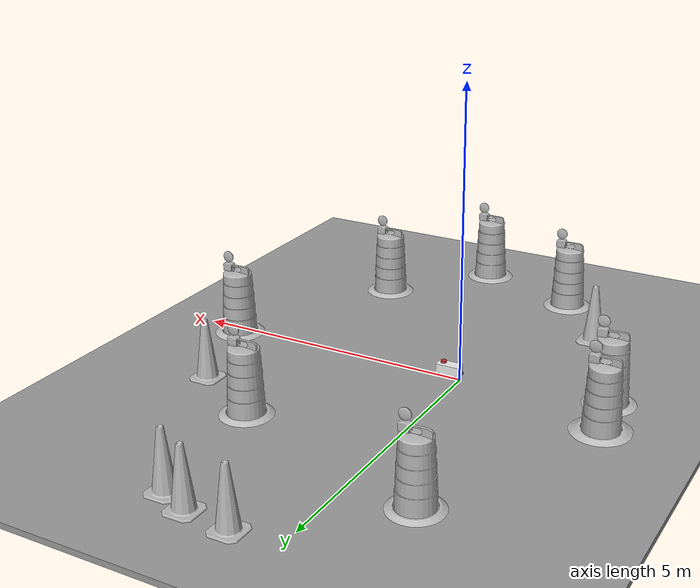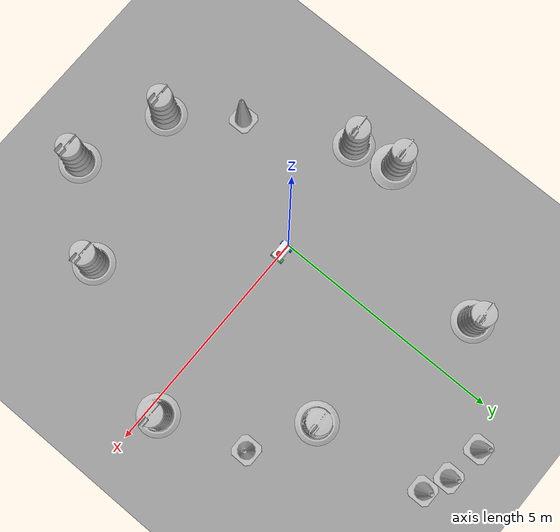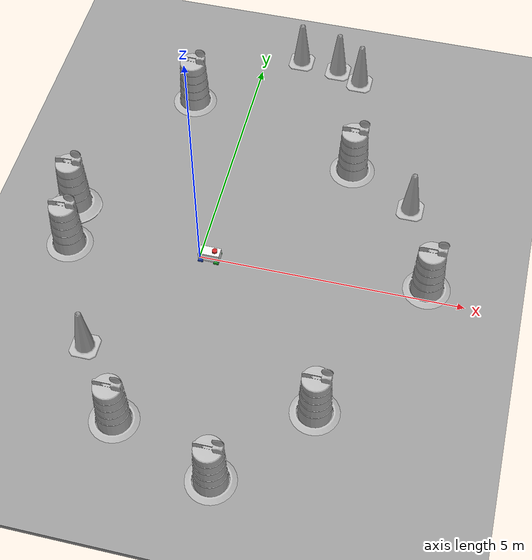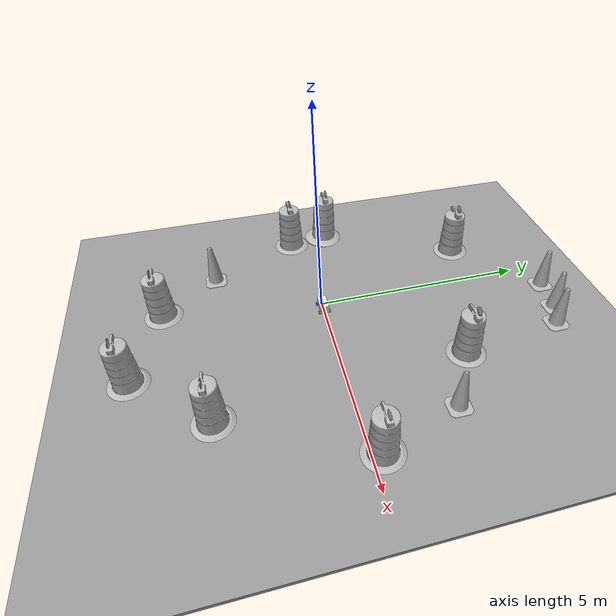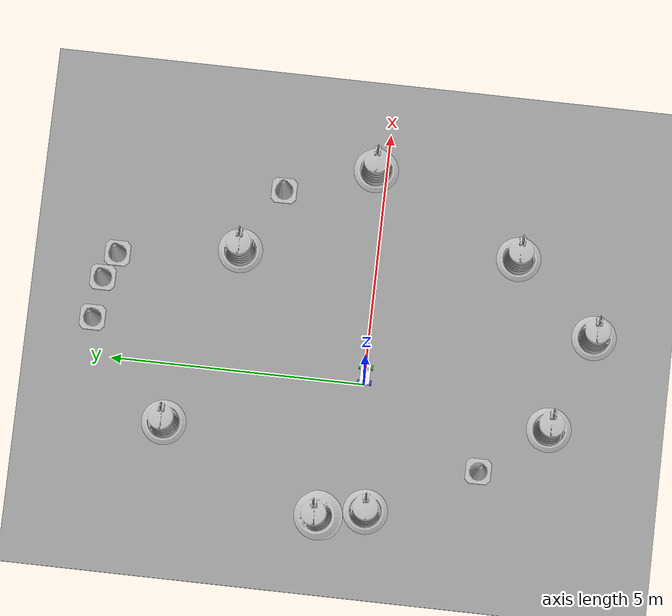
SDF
<sdf version="1.7">
 <world name="default">
  <light name="sun" type="directional">
   <pose>0 0 10 0 -0 0</pose>
   <diffuse>0.8 0.8 0.8 1</diffuse>
   <specular>0.2 0.2 0.2 1</specular>
   <attenuation>
    <range>1000</range>
    <constant>0.9</constant>
    <linear>0.01</linear>
    <quadratic>0.001</quadratic>
   </attenuation>
   <direction>-0.5 0.1 -0.9</direction>
   <spot><inner_angle>0</inner_angle><outer_angle>0</outer_angle><falloff>0</falloff></spot>
  </light>
  <model name="ground_plane">
   <static>1</static>
   <link name="link">
    <collision name="collision">
     <geometry><plane><normal>0 0 1</normal><size>100 100</size></plane></geometry>
     <surface><friction><ode><mu>100</mu><mu2>50</mu2></ode></friction></surface>
    </collision>
    <visual name="visual">
     <cast_shadows>0</cast_shadows>
     <geometry><plane><normal>0 0 1</normal><size>100 100</size></plane></geometry>
     <material>
      <script><uri>file://media/materials/scripts/gazebo.material</uri><name>Gazebo/Grey</name></script>
     </material>
    </visual>
   </link>
  </model>
  <gravity>0 0 -9.8</gravity>
  <magnetic_field>6e-06 2.3e-05 -4.2e-05</magnetic_field>
  <atmosphere type="adiabatic"/>
  <physics type="ode">
   <max_step_size>0.001</max_step_size>
   <real_time_factor>1</real_time_factor>
   <real_time_update_rate>1000</real_time_update_rate>
  </physics>
  <scene><ambient>0.4 0.4 0.4 1</ambient><background>0.7 0.7 0.7 1</background><shadows>1</shadows></scene>
  <audio><device>default</device></audio>
  <spherical_coordinates>
   <surface_model>EARTH_WGS84</surface_model>
   <latitude_deg>0</latitude_deg>
   <longitude_deg>0</longitude_deg>
   <elevation>0</elevation>
   <heading_deg>0</heading_deg>
  </spherical_coordinates>
  <model name="my_bot">
   <link name="base_link">
    <inertial>
     <pose>0.204762 0 0.105952 0 -0 0</pose>
     <mass>2.1</mass>
     <inertia>
      <ixx>0.0148973</ixx>
      <ixy>0</ixy>
      <ixz>-0.00119048</ixz>
      <iyy>0.0358496</iyy>
      <iyz>0</iyz>
      <izz>0.0344107</izz>
     </inertia>
    </inertial>
    <collision name="base_link_fixed_joint_lump__chassis_collision">
     <pose>0.2 0 0.1 0 -0 0</pose>
     <geometry><box><size>0.4 0.2 0.2</size></box></geometry>
    </collision>
    <collision name="base_link_fixed_joint_lump__laser_frame_collision_1">
     <pose>0.3 0 0.225 0 -0 0</pose>
     <geometry><cylinder><length>0.04</length><radius>0.05</radius></cylinder></geometry>
    </collision>
    <visual name="base_link_fixed_joint_lump__chassis_visual">
     <pose>0.2 0 0.1 0 -0 0</pose>
     <geometry><box><size>0.4 0.2 0.2</size></box></geometry>
     <material>
      <script><name>Gazebo/White</name><uri>file://media/materials/scripts/gazebo.material</uri></script>
     </material>
    </visual>
    <visual name="base_link_fixed_joint_lump__laser_frame_visual_1">
     <pose>0.3 0 0.225 0 -0 0</pose>
     <geometry><cylinder><length>0.04</length><radius>0.05</radius></cylinder></geometry>
     <material>
      <script><name>Gazebo/Red</name><uri>file://media/materials/scripts/gazebo.material</uri></script>
     </material>
    </visual>
    <sensor name="laser" type="ray">
     <visualize>1</visualize>
     <update_rate>10</update_rate>
     <ray>
      <scan>
       <horizontal>
        <samples>360</samples>
        <min_angle>-3.14</min_angle>
        <max_angle>3.14</max_angle>
        <resolution>1</resolution>
       </horizontal>
       <vertical><samples>1</samples><min_angle>0</min_angle><max_angle>0</max_angle></vertical>
      </scan>
      <range><min>0.3</min><max>12</max></range>
     </ray>
     <plugin name="laser_controller" filename="libgazebo_ros_ray_sensor.so">
      <ros><argument>~/out:=scan</argument></ros>
      <output_type>sensor_msgs/LaserScan</output_type>
      <frame_name>laser_frame</frame_name>
     </plugin>
     <pose>0.3 0 0.225 0 -0 0</pose>
    </sensor>
   </link>
   <joint name="left_wheel_joint" type="revolute">
    <pose relative_to="base_link">0.05 0.121 0 -1.5708 0 0</pose>
    <parent>base_link</parent>
    <child>left_wheel</child>
    <axis>
     <xyz>0 0 1</xyz>
     <limit><lower>-1e+16</lower><upper>1e+16</upper></limit>
     <dynamics><spring_reference>0</spring_reference><spring_stiffness>0</spring_stiffness></dynamics>
    </axis>
   </joint>
   <link name="left_wheel">
    <pose relative_to="left_wheel_joint">0 0 0 0 -0 0</pose>
    <inertial>
     <mass>0.1</mass>
     <inertia>
      <ixx>7.58333e-05</ixx>
      <ixy>0</ixy>
      <ixz>0</ixz>
      <iyy>7.58333e-05</iyy>
      <iyz>0</iyz>
      <izz>0.000125</izz>
     </inertia>
    </inertial>
    <collision name="left_wheel_collision">
     <geometry><cylinder><length>0.04</length><radius>0.05</radius></cylinder></geometry>
    </collision>
    <visual name="left_wheel_visual">
     <geometry><cylinder><length>0.04</length><radius>0.05</radius></cylinder></geometry>
     <material>
      <script><name>Gazebo/Blue</name><uri>file://media/materials/scripts/gazebo.material</uri></script>
     </material>
    </visual>
   </link>
   <joint name="leftiii_wheel_joint" type="revolute">
    <pose relative_to="base_link">0.35 0.121 0 -1.5708 0 0</pose>
    <parent>base_link</parent>
    <child>leftiii_wheel</child>
    <axis>
     <xyz>0 0 1</xyz>
     <limit><lower>-1e+16</lower><upper>1e+16</upper></limit>
     <dynamics><spring_reference>0</spring_reference><spring_stiffness>0</spring_stiffness></dynamics>
    </axis>
   </joint>
   <link name="leftiii_wheel">
    <pose relative_to="leftiii_wheel_joint">0 0 0 0 -0 0</pose>
    <inertial>
     <mass>0.1</mass>
     <inertia>
      <ixx>7.58333e-05</ixx>
      <ixy>0</ixy>
      <ixz>0</ixz>
      <iyy>7.58333e-05</iyy>
      <iyz>0</iyz>
      <izz>0.000125</izz>
     </inertia>
    </inertial>
    <collision name="leftiii_wheel_collision">
     <geometry><cylinder><length>0.04</length><radius>0.05</radius></cylinder></geometry>
    </collision>
    <visual name="leftiii_wheel_visual">
     <geometry><cylinder><length>0.04</length><radius>0.05</radius></cylinder></geometry>
     <material>
      <script><name>Gazebo/Green</name><uri>file://media/materials/scripts/gazebo.material</uri></script>
     </material>
    </visual>
   </link>
   <joint name="right_wheel_joint" type="revolute">
    <pose relative_to="base_link">0.05 -0.121 0 1.5708 -0 0</pose>
    <parent>base_link</parent>
    <child>right_wheel</child>
    <axis>
     <xyz>0 0 -1</xyz>
     <limit><lower>-1e+16</lower><upper>1e+16</upper></limit>
     <dynamics><spring_reference>0</spring_reference><spring_stiffness>0</spring_stiffness></dynamics>
    </axis>
   </joint>
   <link name="right_wheel">
    <pose relative_to="right_wheel_joint">0 0 0 0 -0 0</pose>
    <inertial>
     <mass>0.1</mass>
     <inertia>
      <ixx>7.58333e-05</ixx>
      <ixy>0</ixy>
      <ixz>0</ixz>
      <iyy>7.58333e-05</iyy>
      <iyz>0</iyz>
      <izz>0.000125</izz>
     </inertia>
    </inertial>
    <collision name="right_wheel_collision">
     <geometry><cylinder><length>0.04</length><radius>0.05</radius></cylinder></geometry>
    </collision>
    <visual name="right_wheel_visual">
     <geometry><cylinder><length>0.04</length><radius>0.05</radius></cylinder></geometry>
     <material>
      <script><name>Gazebo/Blue</name><uri>file://media/materials/scripts/gazebo.material</uri></script>
     </material>
    </visual>
   </link>
   <joint name="rightiii_wheel_joint" type="revolute">
    <pose relative_to="base_link">0.35 -0.121 0 1.5708 -0 0</pose>
    <parent>base_link</parent>
    <child>rightiii_wheel</child>
    <axis>
     <xyz>0 0 -1</xyz>
     <limit><lower>-1e+16</lower><upper>1e+16</upper></limit>
     <dynamics><spring_reference>0</spring_reference><spring_stiffness>0</spring_stiffness></dynamics>
    </axis>
   </joint>
   <link name="rightiii_wheel">
    <pose relative_to="rightiii_wheel_joint">0 0 0 0 -0 0</pose>
    <inertial>
     <mass>0.1</mass>
     <inertia>
      <ixx>7.58333e-05</ixx>
      <ixy>0</ixy>
      <ixz>0</ixz>
      <iyy>7.58333e-05</iyy>
      <iyz>0</iyz>
      <izz>0.000125</izz>
     </inertia>
    </inertial>
    <collision name="rightiii_wheel_collision">
     <geometry><cylinder><length>0.04</length><radius>0.05</radius></cylinder></geometry>
    </collision>
    <visual name="rightiii_wheel_visual">
     <geometry><cylinder><length>0.04</length><radius>0.05</radius></cylinder></geometry>
     <material>
      <script><name>Gazebo/Green</name><uri>file://media/materials/scripts/gazebo.material</uri></script>
     </material>
    </visual>
   </link>
   <static>0</static>
   <plugin name="gazebo_ros2_control" filename="libgazebo_ros2_control.so">
    <parameters>/home/abdelrahman/dev_ws/install/my_bot/share/my_bot/config/my_controllers.yaml</parameters>
   </plugin>
   <pose>0.000141 3.4e-05 0.05 0 -0 -0.002809</pose>
  </model>
  <model name="Construction Cone">
   <link name="link">
    <collision name="collision">
     <geometry>
      <mesh><scale>10 10 10</scale><uri>model://construction_cone/meshes/construction_cone.dae</uri></mesh>
     </geometry>
    </collision>
    <visual name="visual">
     <geometry>
      <mesh><scale>10 10 10</scale><uri>model://construction_cone/meshes/construction_cone.dae</uri></mesh>
     </geometry>
    </visual>
    <inertial>
     <inertia><ixx>1</ixx><ixy>0</ixy><ixz>0</ixz><iyy>1</iyy><iyz>0</iyz><izz>1</izz></inertia>
     <mass>1</mass>
    </inertial>
   </link>
   <pose>1.55796 5.34156 -1e-05 0 -0 0</pose>
  </model>
  <model name="ground_plane_0">
   <static>1</static>
   <link name="link">
    <collision name="collision">
     <geometry><plane><normal>0 0 1</normal><size>100 100</size></plane></geometry>
     <surface><friction><ode><mu>100</mu><mu2>50</mu2></ode></friction></surface>
    </collision>
    <visual name="visual">
     <cast_shadows>0</cast_shadows>
     <geometry><plane><normal>0 0 1</normal><size>100 100</size></plane></geometry>
     <material>
      <script><uri>file://media/materials/scripts/gazebo.material</uri><name>Gazebo/Grey</name></script>
     </material>
    </visual>
   </link>
   <pose>0.031027 5.18668 0 0 -0 0</pose>
  </model>
  <model name="Construction Cone_0">
   <link name="link">
    <collision name="collision">
     <geometry>
      <mesh><scale>10 10 10</scale><uri>model://construction_cone/meshes/construction_cone.dae</uri></mesh>
     </geometry>
    </collision>
    <visual name="visual">
     <geometry>
      <mesh><scale>10 10 10</scale><uri>model://construction_cone/meshes/construction_cone.dae</uri></mesh>
     </geometry>
    </visual>
    <inertial>
     <inertia><ixx>1</ixx><ixy>0</ixy><ixz>0</ixz><iyy>1</iyy><iyz>0</iyz><izz>1</izz></inertia>
     <mass>1</mass>
    </inertial>
   </link>
   <pose>0.750113 5.44919 -1e-05 0 -0 0</pose>
  </model>
  <model name="Construction Barrel">
   <link name="link">
    <inertial>
     <pose>0 0 0.4 0 -0 0</pose>
     <mass>500</mass>
     <inertia><ixx>51.2096</ixx><iyy>51.2096</iyy><izz>25</izz><ixy>0</ixy><ixz>0</ixz><iyz>0</iyz></inertia>
    </inertial>
    <collision name="collision">
     <geometry><mesh><uri>model://construction_barrel/meshes/construction_barrel.dae</uri></mesh></geometry>
    </collision>
    <visual name="visual">
     <geometry><mesh><uri>model://construction_barrel/meshes/construction_barrel.dae</uri></mesh></geometry>
    </visual>
   </link>
   <pose>-1.15606 3.81711 -1e-06 1e-06 6e-06 -0.000126</pose>
  </model>
  <model name="Construction Barrel_0">
   <link name="link">
    <inertial>
     <pose>0 0 0.4 0 -0 0</pose>
     <mass>500</mass>
     <inertia><ixx>51.2096</ixx><iyy>51.2096</iyy><izz>25</izz><ixy>0</ixy><ixz>0</ixz><iyz>0</iyz></inertia>
    </inertial>
    <collision name="collision">
     <geometry><mesh><uri>model://construction_barrel/meshes/construction_barrel.dae</uri></mesh></geometry>
    </collision>
    <visual name="visual">
     <geometry><mesh><uri>model://construction_barrel/meshes/construction_barrel.dae</uri></mesh></geometry>
    </visual>
   </link>
   <pose>1.412 -4.38926 -1e-06 1e-06 6e-06 -0.000118</pose>
  </model>
  <model name="Construction Cone_1">
   <link name="link">
    <collision name="collision">
     <geometry>
      <mesh><scale>10 10 10</scale><uri>model://construction_cone/meshes/construction_cone.dae</uri></mesh>
     </geometry>
    </collision>
    <visual name="visual">
     <geometry>
      <mesh><scale>10 10 10</scale><uri>model://construction_cone/meshes/construction_cone.dae</uri></mesh>
     </geometry>
    </visual>
    <inertial>
     <inertia><ixx>1</ixx><ixy>0</ixy><ixz>0</ixz><iyy>1</iyy><iyz>0</iyz><izz>1</izz></inertia>
     <mass>1</mass>
    </inertial>
   </link>
   <pose>-1.44132 -2.40335 -1e-05 0 -0 0</pose>
  </model>
  <model name="Construction Barrel_1">
   <link name="link">
    <inertial>
     <pose>0 0 0.4 0 -0 0</pose>
     <mass>500</mass>
     <inertia><ixx>51.2096</ixx><iyy>51.2096</iyy><izz>25</izz><ixy>0</ixy><ixz>0</ixz><iyz>0</iyz></inertia>
    </inertial>
    <collision name="collision">
     <geometry><mesh><uri>model://construction_barrel/meshes/construction_barrel.dae</uri></mesh></geometry>
    </collision>
    <visual name="visual">
     <geometry><mesh><uri>model://construction_barrel/meshes/construction_barrel.dae</uri></mesh></geometry>
    </visual>
   </link>
   <pose>-2.6536 0.639786 0.022994 -0.042103 -0.017241 0.045597</pose>
  </model>
  <model name="Construction Barrel_2">
   <link name="link">
    <inertial>
     <pose>0 0 0.4 0 -0 0</pose>
     <mass>500</mass>
     <inertia><ixx>51.2096</ixx><iyy>51.2096</iyy><izz>25</izz><ixy>0</ixy><ixz>0</ixz><iyz>0</iyz></inertia>
    </inertial>
    <collision name="collision">
     <geometry><mesh><uri>model://construction_barrel/meshes/construction_barrel.dae</uri></mesh></geometry>
    </collision>
    <visual name="visual">
     <geometry><mesh><uri>model://construction_barrel/meshes/construction_barrel.dae</uri></mesh></geometry>
    </visual>
   </link>
   <pose>2.38217 2.70998 -1e-06 1e-06 6e-06 -9.3e-05</pose>
  </model>
  <model name="Construction Barrel_3">
   <link name="link">
    <inertial>
     <pose>0 0 0.4 0 -0 0</pose>
     <mass>500</mass>
     <inertia><ixx>51.2096</ixx><iyy>51.2096</iyy><izz>25</izz><ixy>0</ixy><ixz>0</ixz><iyz>0</iyz></inertia>
    </inertial>
    <collision name="collision">
     <geometry><mesh><uri>model://construction_barrel/meshes/construction_barrel.dae</uri></mesh></geometry>
    </collision>
    <visual name="visual">
     <geometry><mesh><uri>model://construction_barrel/meshes/construction_barrel.dae</uri></mesh></geometry>
    </visual>
   </link>
   <pose>4.26185 0.220876 -1e-06 1e-06 6e-06 -6.8e-05</pose>
  </model>
  <model name="Construction Cone_2">
   <link name="link">
    <collision name="collision">
     <geometry>
      <mesh><scale>10 10 10</scale><uri>model://construction_cone/meshes/construction_cone.dae</uri></mesh>
     </geometry>
    </collision>
    <visual name="visual">
     <geometry>
      <mesh><scale>10 10 10</scale><uri>model://construction_cone/meshes/construction_cone.dae</uri></mesh>
     </geometry>
    </visual>
    <inertial>
     <inertia><ixx>1</ixx><ixy>0</ixy><ixz>0</ixz><iyy>1</iyy><iyz>0</iyz><izz>1</izz></inertia>
     <mass>1</mass>
    </inertial>
   </link>
   <pose>3.66588 1.98528 -1e-05 0 -0 0</pose>
  </model>
  <model name="Construction Cone_3">
   <link name="link">
    <collision name="collision">
     <geometry>
      <mesh><scale>10 10 10</scale><uri>model://construction_cone/meshes/construction_cone.dae</uri></mesh>
     </geometry>
    </collision>
    <visual name="visual">
     <geometry>
      <mesh><scale>10 10 10</scale><uri>model://construction_cone/meshes/construction_cone.dae</uri></mesh>
     </geometry>
    </visual>
    <inertial>
     <inertia><ixx>1</ixx><ixy>0</ixy><ixz>0</ixz><iyy>1</iyy><iyz>0</iyz><izz>1</izz></inertia>
     <mass>1</mass>
    </inertial>
   </link>
   <pose>2.06834 5.10886 -1e-05 0 -0 0</pose>
  </model>
  <model name="Construction Barrel_4">
   <link name="link">
    <inertial>
     <pose>0 0 0.4 0 -0 0</pose>
     <mass>500</mass>
     <inertia><ixx>51.2096</ixx><iyy>51.2096</iyy><izz>25</izz><ixy>0</ixy><ixz>0</ixz><iyz>0</iyz></inertia>
    </inertial>
    <collision name="collision">
     <geometry><mesh><uri>model://construction_barrel/meshes/construction_barrel.dae</uri></mesh></geometry>
    </collision>
    <visual name="visual">
     <geometry><mesh><uri>model://construction_barrel/meshes/construction_barrel.dae</uri></mesh></geometry>
    </visual>
   </link>
   <pose>2.80742 -2.75964 -1e-06 1e-06 6e-06 -2.5e-05</pose>
  </model>
  <model name="Construction Barrel_5">
   <link name="link">
    <inertial>
     <pose>0 0 0.4 0 -0 0</pose>
     <mass>500</mass>
     <inertia><ixx>51.2096</ixx><iyy>51.2096</iyy><izz>25</izz><ixy>0</ixy><ixz>0</ixz><iyz>0</iyz></inertia>
    </inertial>
    <collision name="collision">
     <geometry><mesh><uri>model://construction_barrel/meshes/construction_barrel.dae</uri></mesh></geometry>
    </collision>
    <visual name="visual">
     <geometry><mesh><uri>model://construction_barrel/meshes/construction_barrel.dae</uri></mesh></geometry>
    </visual>
   </link>
   <pose>-2.46547 -0.29364 -2.9e-05 -4e-05 -1.3e-05 0.065196</pose>
  </model>
  <model name="Construction Barrel_6">
   <link name="link">
    <inertial>
     <pose>0 0 0.4 0 -0 0</pose>
     <mass>500</mass>
     <inertia><ixx>51.2096</ixx><iyy>51.2096</iyy><izz>25</izz><ixy>0</ixy><ixz>0</ixz><iyz>0</iyz></inertia>
    </inertial>
    <collision name="collision">
     <geometry><mesh><uri>model://construction_barrel/meshes/construction_barrel.dae</uri></mesh></geometry>
    </collision>
    <visual name="visual">
     <geometry><mesh><uri>model://construction_barrel/meshes/construction_barrel.dae</uri></mesh></geometry>
    </visual>
   </link>
   <pose>-0.483045 -3.68956 -2e-06 7e-06 -4e-06 -8e-06</pose>
  </model>
 </world>
</sdf>
